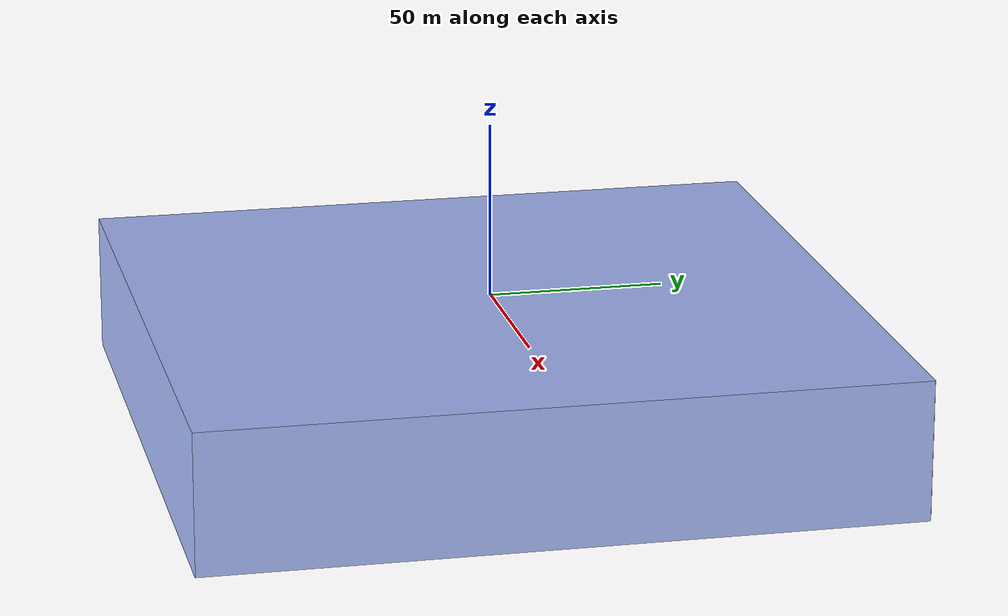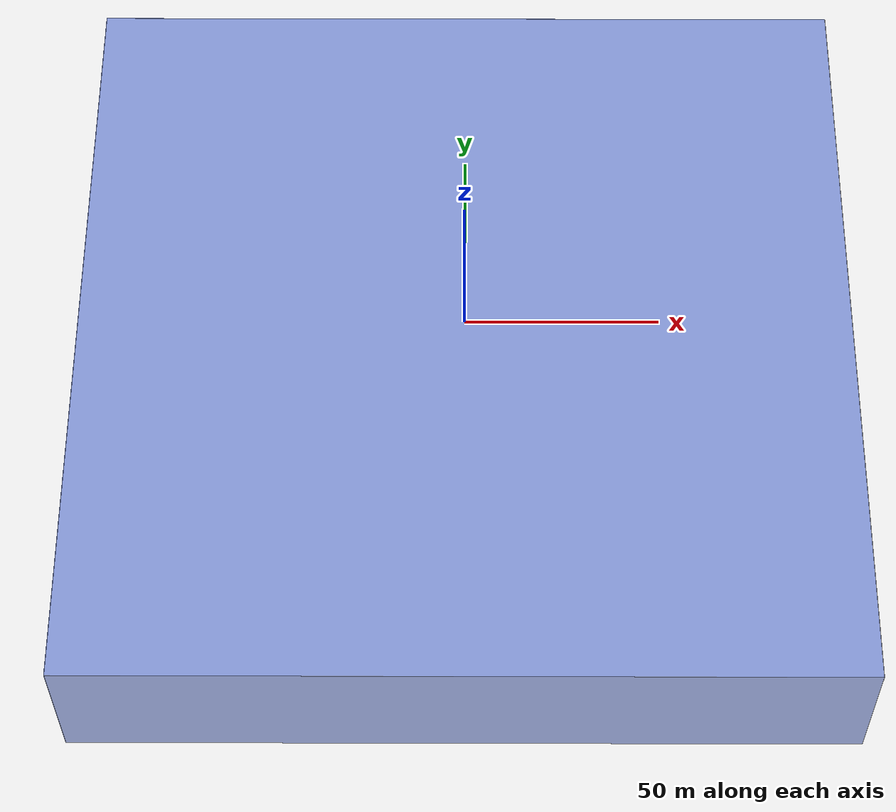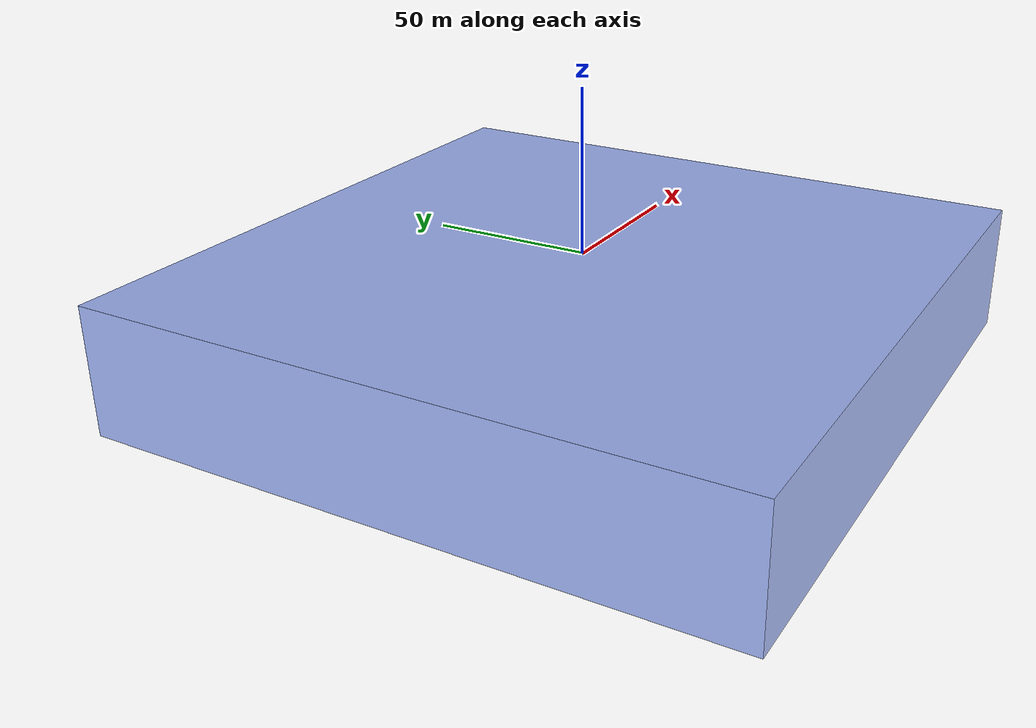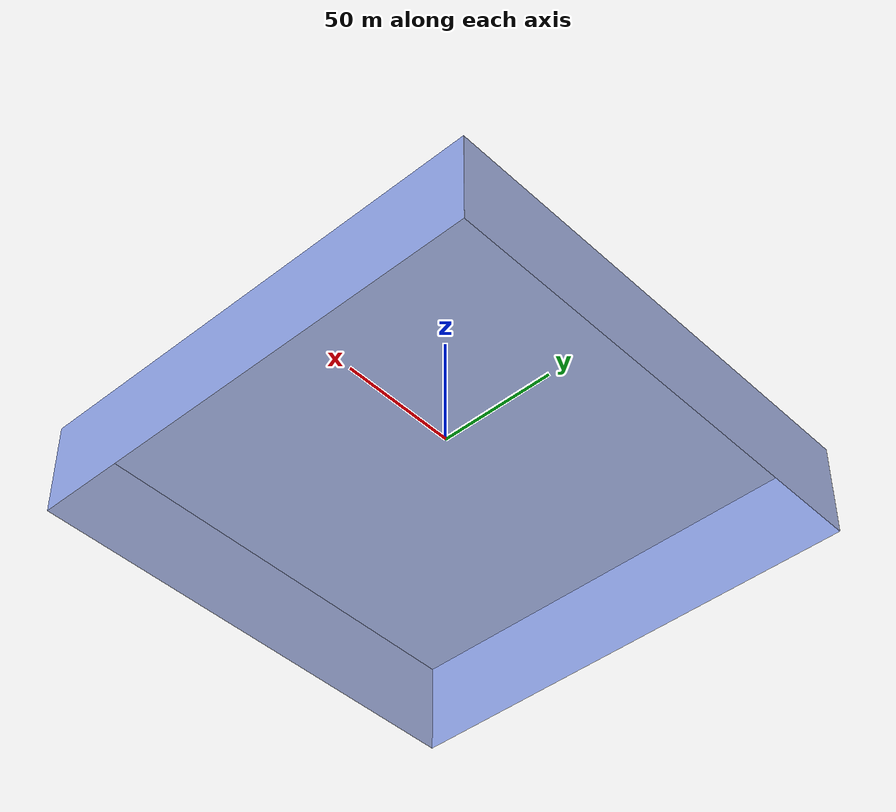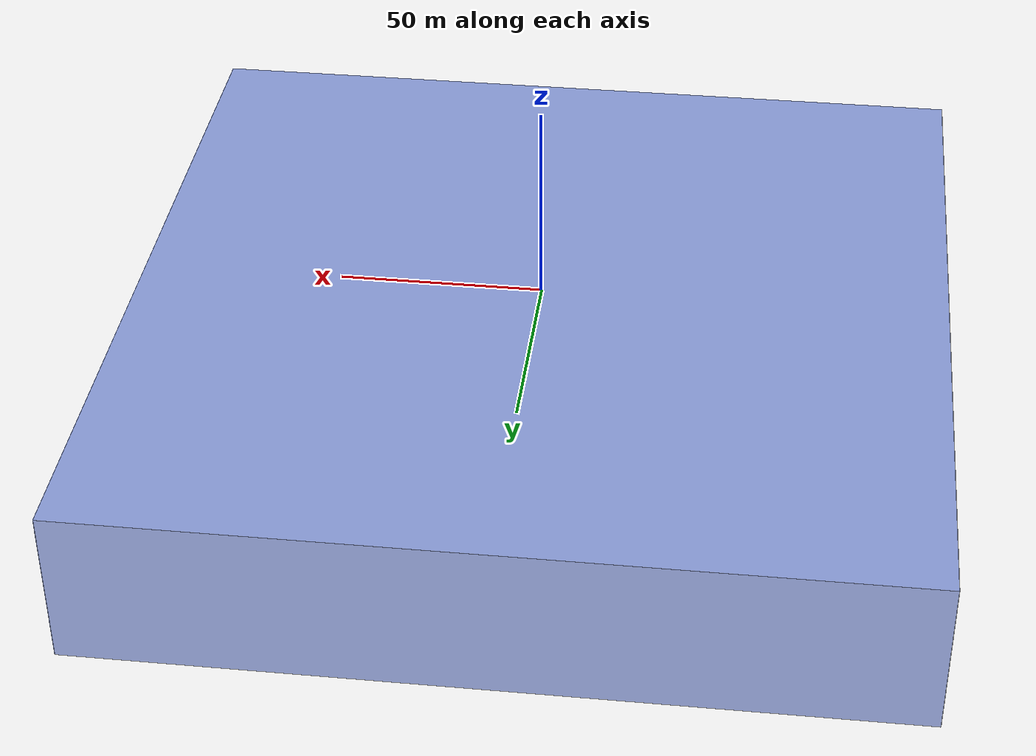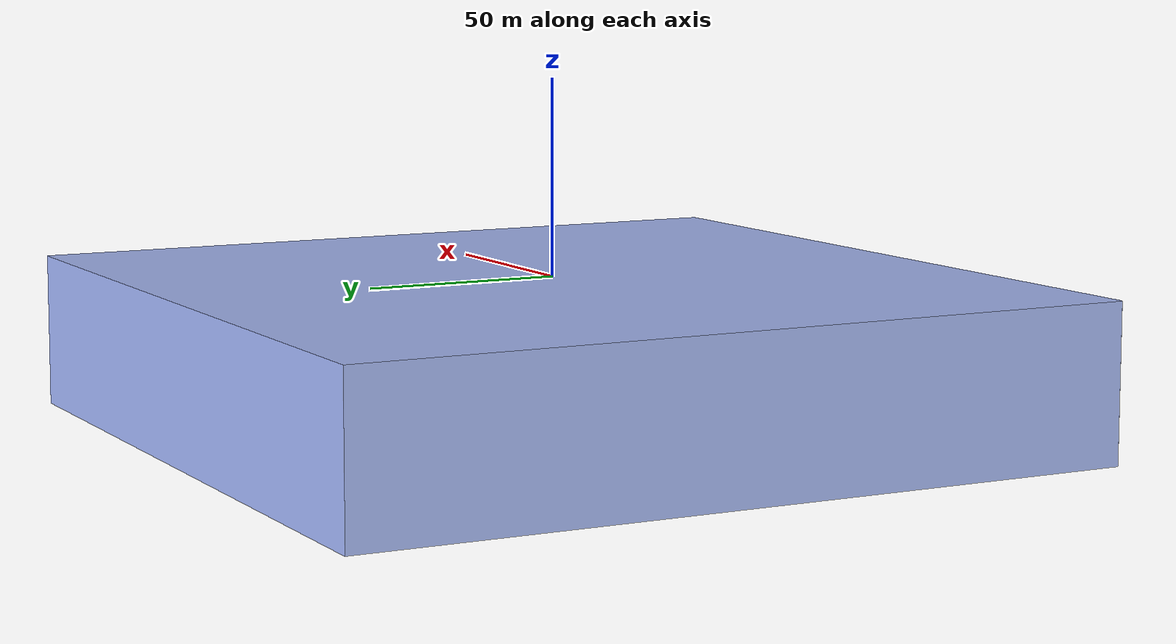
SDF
<?xml version='1.0'?>
<sdf version='1.7'>
  <model name='ceiling_plane'>
    <link name='link'>
      <self_collide>0</self_collide>
      <enable_wind>0</enable_wind>
      <kinematic>0</kinematic>
      <pose>0 0 0 0 -0 0</pose>
      <gravity>1</gravity>
      <inertial>
        <mass>1</mass>
        <pose>0 0 0 0 -0 0</pose>
        <inertia>
          <ixx>1</ixx>
          <ixy>0</ixy>
          <ixz>0</ixz>
          <iyy>1</iyy>
          <iyz>0</iyz>
          <izz>1</izz>
        </inertia>
      </inertial>
      <visual name='visual'>
        <cast_shadows>0</cast_shadows>
        <geometry>
          <box>
            <size>200 200 0.1</size>
          </box>
        </geometry>
        <material>
          <script>
            <uri>file://media/materials/scripts/gazebo.material</uri>
            <name>Gazebo/BlueTransparent</name>
          </script>
          <shader type='pixel'>
            <normal_map>__default__</normal_map>
          </shader>
          <ambient>0 0 1 1</ambient>
          <diffuse>0 0 1 0.5</diffuse>
          <specular>0 0 0 1</specular>
          <emissive>0 0 0 1</emissive>
        </material>
        <pose>0 0 0 0 -0 0</pose>
        <transparency>0</transparency>
      </visual>
      <visual name='visual_sideC'>
        <pose>0 100.05 -20 0 -0 0</pose>
        <cast_shadows>0</cast_shadows>
        <geometry>
          <box>
            <size>200 0.1 39.9</size>
          </box>
        </geometry>
        <material>
          <script>
            <uri>file://media/materials/scripts/gazebo.material</uri>
            <name>Gazebo/BlueTransparent</name>
          </script>
          <shader type='pixel'>
            <normal_map>__default__</normal_map>
          </shader>
          <ambient>0 0 1 1</ambient>
          <diffuse>0 0 1 0.5</diffuse>
          <specular>0 0 0 1</specular>
          <emissive>0 0 0 1</emissive>
        </material>
        <transparency>0</transparency>
      </visual>
      <visual name='visual_sideD'>
        <pose>0 -100.05 -20 0 -0 0</pose>
        <cast_shadows>0</cast_shadows>
        <geometry>
          <box>
            <size>200 0.1 39.9</size>
          </box>
        </geometry>
        <material>
          <script>
            <uri>file://media/materials/scripts/gazebo.material</uri>
            <name>Gazebo/BlueTransparent</name>
          </script>
          <shader type='pixel'>
            <normal_map>__default__</normal_map>
          </shader>
          <ambient>0 0 1 1</ambient>
          <diffuse>0 0 1 0.5</diffuse>
          <specular>0 0 0 1</specular>
          <emissive>0 0 0 1</emissive>
        </material>
        <transparency>0</transparency>
      </visual>
      <visual name='visual_sideA'>
        <pose>100.05 0 -20 0 -0 0</pose>
        <cast_shadows>0</cast_shadows>
        <geometry>
          <box>
            <size>0.1 200 39.9</size>
          </box>
        </geometry>
        <material>
          <script>
            <uri>file://media/materials/scripts/gazebo.material</uri>
            <name>Gazebo/BlueTransparent</name>
          </script>
          <shader type='pixel'>
            <normal_map>__default__</normal_map>
          </shader>
          <ambient>0 0 1 1</ambient>
          <diffuse>0 0 1 0.5</diffuse>
          <specular>0 0 0 1</specular>
          <emissive>0 0 0 1</emissive>
        </material>
        <transparency>0</transparency>
      </visual>
      <visual name='visual_sideB'>
        <pose>-100.05 0 -20 0 -0 0</pose>
        <cast_shadows>0</cast_shadows>
        <geometry>
          <box>
            <size>0.1 200 39.9</size>
          </box>
        </geometry>
        <material>
          <script>
            <uri>file://media/materials/scripts/gazebo.material</uri>
            <name>Gazebo/BlueTransparent</name>
          </script>
          <shader type='pixel'>
            <normal_map>__default__</normal_map>
          </shader>
          <ambient>0 0 1 1</ambient>
          <diffuse>0 0 1 0.5</diffuse>
          <specular>0 0 0 1</specular>
          <emissive>0 0 0 1</emissive>
        </material>
        <transparency>0</transparency>
      </visual>
      <collision name='collision'>
        <laser_retro>0</laser_retro>
        <max_contacts>10</max_contacts>
        <pose>0 0 -35 0 -0 0</pose>
        <geometry>
          <box>
            <size>200 200 0.1</size>
          </box>
        </geometry>
        <surface>
          <friction>
            <ode>
              <mu>1</mu>
              <mu2>1</mu2>
              <fdir1>0 0 0</fdir1>
              <slip1>0</slip1>
              <slip2>0</slip2>
            </ode>
            <torsional>
              <coefficient>1</coefficient>
              <patch_radius>0</patch_radius>
              <surface_radius>0</surface_radius>
              <use_patch_radius>1</use_patch_radius>
              <ode>
                <slip>0</slip>
              </ode>
            </torsional>
          </friction>
          <bounce>
            <restitution_coefficient>0</restitution_coefficient>
            <threshold>1e+06</threshold>
          </bounce>
          <contact>
            <collide_without_contact>0</collide_without_contact>
            <collide_without_contact_bitmask>1</collide_without_contact_bitmask>
            <collide_bitmask>1</collide_bitmask>
            <ode>
              <soft_cfm>0</soft_cfm>
              <soft_erp>0.2</soft_erp>
              <kp>1e+13</kp>
              <kd>1</kd>
              <max_vel>0.01</max_vel>
              <min_depth>0</min_depth>
            </ode>
            <bullet>
              <split_impulse>1</split_impulse>
              <split_impulse_penetration_threshold>-0.01</split_impulse_penetration_threshold>
              <soft_cfm>0</soft_cfm>
              <soft_erp>0.2</soft_erp>
              <kp>1e+13</kp>
              <kd>1</kd>
            </bullet>
          </contact>
        </surface>
      </collision>
    </link>
    <static>1</static>
    <allow_auto_disable>1</allow_auto_disable>
  </model>
</sdf>
